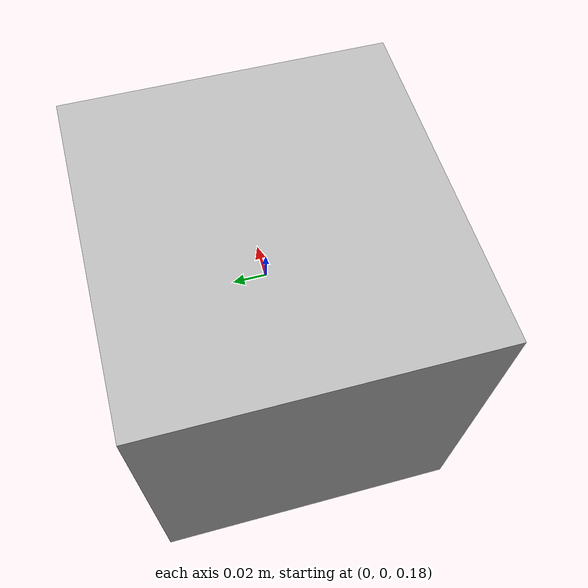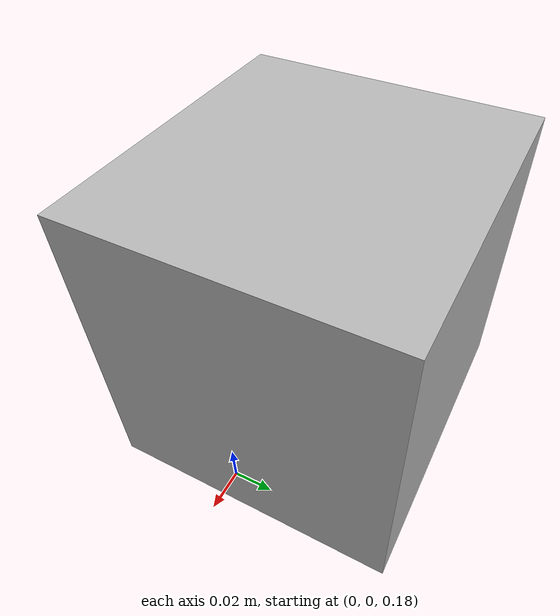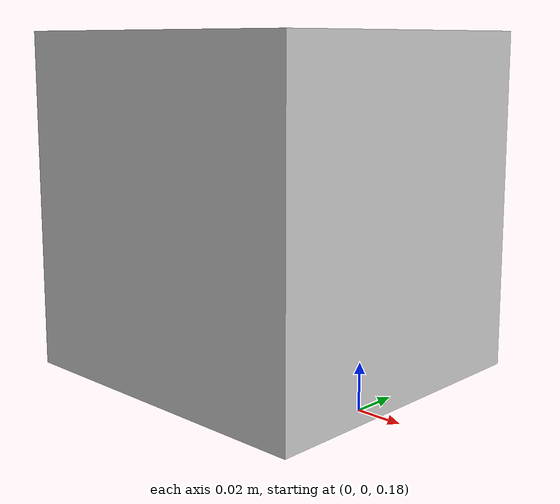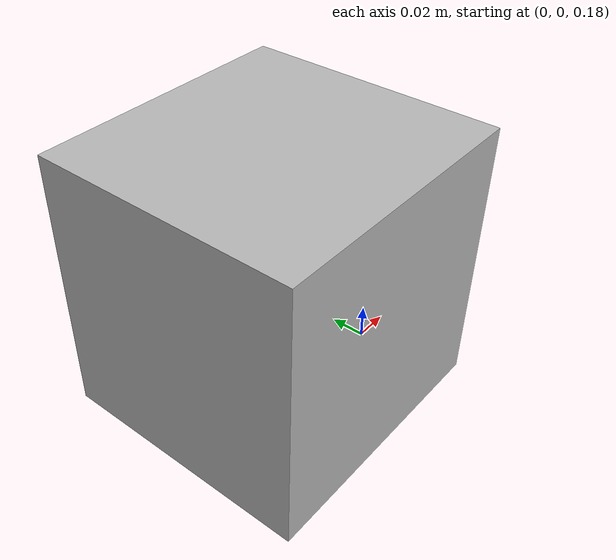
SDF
<?xml version="1.0" ?>
<sdf version="1.6">
  <model name="small_box">
    <static>false</static>
    <link name="link">
      <pose>-0.06270 0.014267 0.256379 0 -0 0</pose>
      <inertial>
        <mass>0.5</mass>

        <inertia>

          <ixx>0.00355377</ixx>
          <iyy>0.00375000</iyy>
          <izz>0.00355377</izz>
          <ixy>0.0</ixy>
          <ixz>0.0</ixz>
          <iyz>0.0</iyz>
        </inertia>
      </inertial>
      <visual name="visual">
        <geometry>
          <box>
            <size>0.15 0.141934 0.15</size>
          </box>
        </geometry>
      </visual>
      <collision name="collision">
        <geometry>
          <box>
            <size>0.15 0.141934 0.15</size>
          </box>
        </geometry>
        <surface>
          <friction>
            <ode>
              <mu>10</mu>
              <mu2>20</mu2>
            </ode>
          </friction>
          <bounce>
            <restitution_coefficient>0.0</restitution_coefficient>
          </bounce>
        </surface>
      </collision>
    </link>
  </model>
</sdf>
